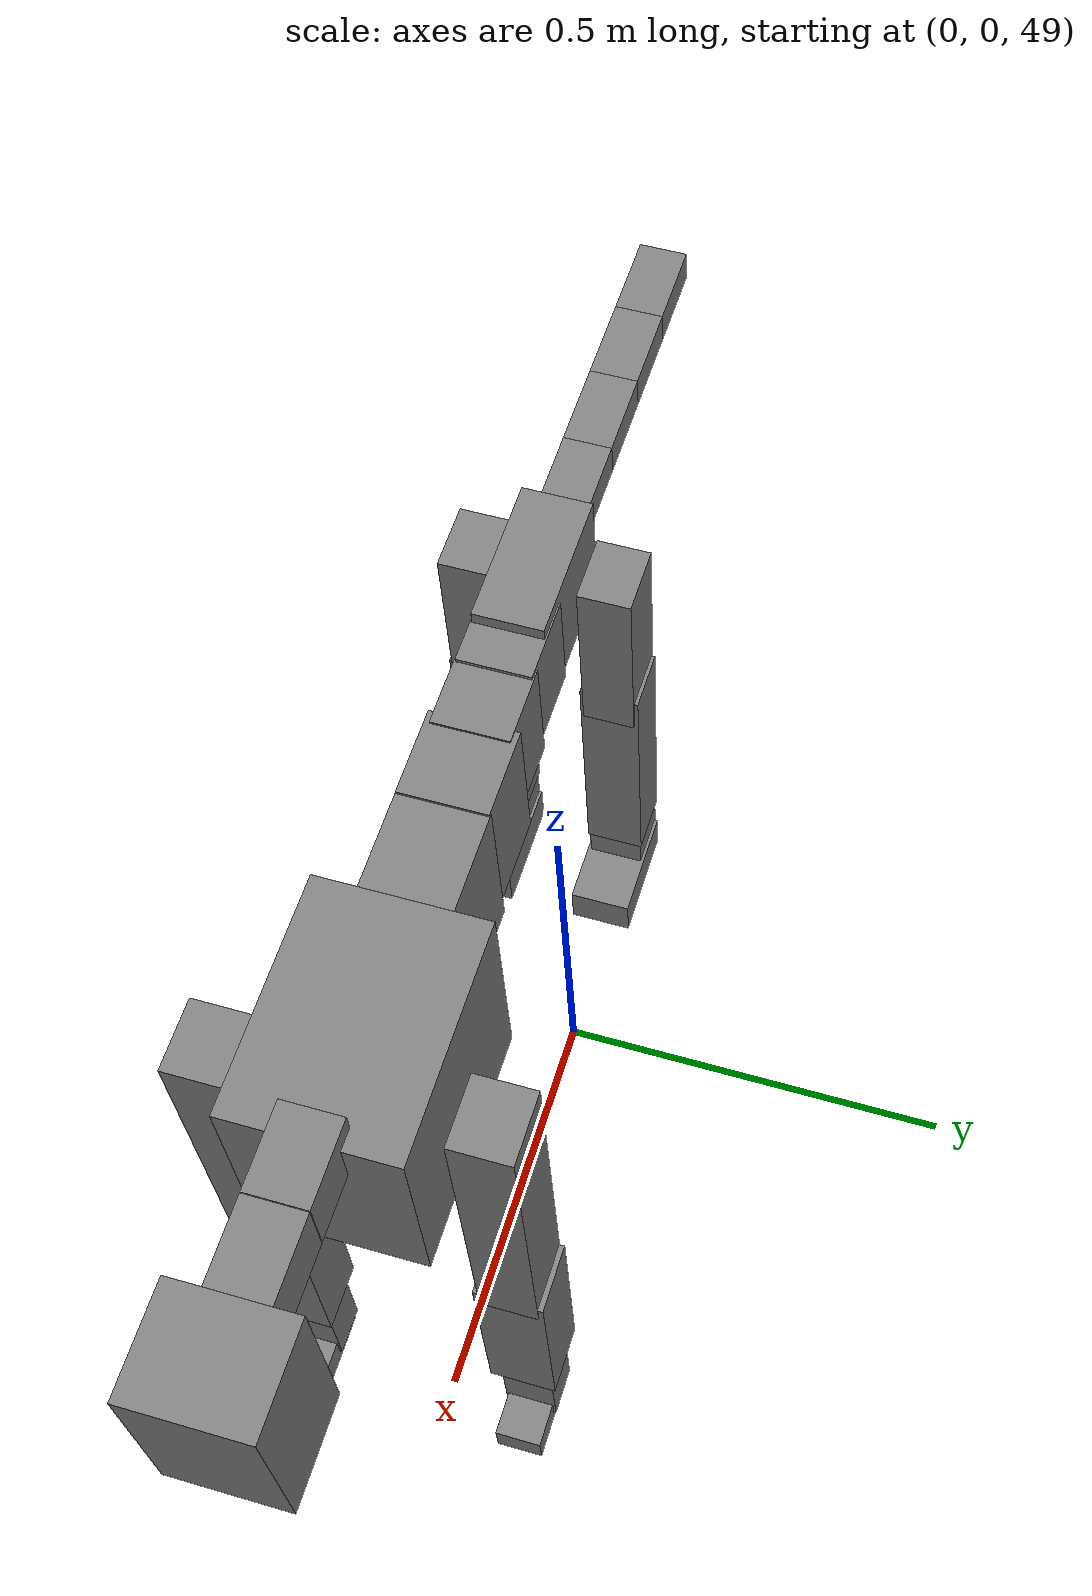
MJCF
<mujoco model="dog">

    <default>
        <joint armature="0.02" stiffness="1" damping="0.2" limited="true"/>
        <geom condim="3" friction="1 0.05 0.05" margin="0.01"/>
        <motor ctrllimited="true" ctrlrange="-1.0 1.0" forcelimited="true" gear="50"/>
    </default>

    <compiler inertiafromgeom="true" angle="radian"/>

    <option timestep="0.016" iterations="50" tolerance="1e-10" solver="Newton" jacobian="dense" cone="pyramidal"/>

    <size nconmax="20000" njmax="60000" nstack="5000000"/>
    <visual>
        <map force="0.1" zfar="30"/>
        <rgba haze="0.15 0.25 0.35 1"/>
        <quality shadowsize="2048"/>
        <global offwidth="800" offheight="800"/>
    </visual>

    <asset>
        <texture type="skybox" builtin="gradient" rgb1="0.3 0.5 0.7" rgb2="0 0 0" width="512" height="512"/>
        <texture name="texplane" type="2d" builtin="checker" rgb1=".2 .3 .4" rgb2=".1 0.15 0.2" width="512" height="512"
                 mark="cross" markrgb=".8 .8 .8"/>
        <texture name="texgeom" type="cube" builtin="flat" mark="cross" width="127" height="1278" rgb1="0.8 0.6 0.4"
                 rgb2="0.8 0.6 0.4" markrgb="1 1 1" random="0.01"/>

        <material name="matplane" reflectance="0.3" texture="texplane" texrepeat="1 1" texuniform="true"/>
        <material name="matgeom" texture="texgeom" texuniform="true" rgba="0.8 0.6 .4 1"/>
    </asset>

    <worldbody>
        <geom name="floor" pos="0 0 0" size="0 0 .25" type="plane" material="matplane" condim="3"/>

        <light directional="false" diffuse=".2 .2 .2" specular="0 0 0" pos="0 0 5" dir="0 0 -1" castshadow="false"/>
        <light mode="targetbodycom" target="torso" directional="false" diffuse=".8 .8 .8" specular="0.3 0.3 0.3"
               pos="0 0 4.0" dir="0 0 -1"/>

        <body name="root" pos="0 0 50">
            <freejoint name="root_1"/>
            <geom type="box" pos="0 0 -0.02" size="0.0774  0.0358  0.063" density="2030"/>

            <body name="spine1" pos="0.054 0 0">
                <joint name="spine1_y" axis="0 1 0" range="0 0.7" limited="true"/>
                <geom type="box" pos="0.02375 0 -0.03" size="0.04375  0.0375  0.05985" density="2030"/>

                <body name="spine2" pos="0.0612 0 0">
                    <joint name="spine2_y" axis="0 1 0" range="-0.15 0.15" limited="true"/>
                    <geom type="box" pos="0.03555  0  -0.04" size="0.04055  0.039  0.06615" density="2030"/>

                    <body name="spine3" pos="0.0730 0 0">
                        <joint name="spine3_y" axis="0 1 0" range="-0.15 0.15" limited="true"/>
                        <geom type="box" pos="0.03555  0  -0.057" size="0.04555  0.0445  0.081" density="2030"/>

                        <body name="spine4" pos="0.0780 0 0">
                            <joint name="spine4_y" axis="0 1 0" range="-0.15 0.15" limited="true"/>
                            <geom type="box" pos="0.05265  0  -0.07" size="0.05265  0.045  0.09135" density="2030"/>

                            <body name="torso" pos="0.1082 0 0">
                                <joint name="torso_y" axis="0 1 0" range="-0.15 0.15" limited="true"/>
                                <geom type="box" pos="0.11925  0  -0.085" size="0.11925  0.085  0.11745"
                                      density="2030"/>

                                <body name="neck1" pos="0.2160  0   0.0180">
                                    <joint name="neck1_y" axis="0 1 0" range="-1.2  -1" limited="true"/>
                                    <geom type="box" pos="0.0423  0  0" size="0.0423  0.03  0.036" density="2325"/>

                                    <body name="neck2" pos="0.0853  0  0">
                                        <joint name="neck2_y" axis="0 1 0" range="0.1  0" limited="true"/>
                                        <geom type="box" pos="0.0423  0  0" size="0.0423  0.03  0.036" density="2325"/>

                                        <body name="head" pos="0.0853  0  0">
                                            <joint name="head_y" axis="0 1 0" range="-0.3  -0.2" limited="true"/>
                                            <geom type="box" pos="0.0531  0  -0.055" size="0.0531  0.06  0.1044"
                                                  density="4030"/>

                                        </body>
                                    </body>
                                </body>

                                <body name="front_shoulder" pos="0.156  0   -0.0480">
                                    <joint name="front_shoulder_y" axis="0 1 0" range="-1 1.5" limited="true"/>
                                    <geom type="box" pos="0 0.13 -0.1756" size="0.0365  0.0312  0.2023" density="1158"/>
                                    <geom type="box" pos="0 -0.13 -0.1756" size="0.0365  0.0312  0.2023"
                                          density="1158"/>

                                    <body name="front_elbow" pos="0  0  -0.3513">
                                        <joint name="front_elbow_y" axis="0 1 0" range="-2 0" limited="true"/>
                                        <geom type="box" pos="0 0.13 -0.1345" size="0.0360  0.0369  0.1345"
                                              density="1081"/>
                                        <geom type="box" pos="0 -0.13 -0.1345" size="0.0360  0.0369  0.1345"
                                              density="1081"/>

                                        <body name="front_wrist" pos="0  0  -0.2690">
                                            <joint name="front_wrist_y" axis="0 1 0" range="-0.2 0" limited="true"/>
                                            <geom type="box" pos="0 0.13 -0.0569" size="0.0259  0.0288  0.0700"
                                                  density="1664"/>
                                            <geom type="box" pos="0 -0.13 -0.0569" size="0.0259  0.0288  0.0700"
                                                  density="1664"/>

                                            <body name="front_finger_end" pos="0  0  -0.1137">
                                                <joint name="front_finger_y" axis="0 1 0" range="-0.4 1"
                                                       limited="true"/>
                                                <geom type="box" pos="0.0261  0.13  -0.0064"
                                                      size="0.0478  0.0261  0.0214" density="1515"/>
                                                <geom type="box" pos="0.0261  -0.13  -0.0064"
                                                      size="0.0478  0.0261  0.0214" density="1515"/>

                                            </body>

                                        </body>
                                    </body>
                                </body>

                            </body>
                        </body>
                    </body>
                </body>
            </body>

            <body name="back_hip" pos="-0.03 0 -0.018">
                <joint name="back_hip_y" axis="0 1 0" range="-1.5 0.3" limited="true"/>
                <geom type="box" pos="0 0.07 -0.0804" size="0.0346  0.0272  0.1032" density="1154"/>
                <geom type="box" pos="0 -0.07 -0.0804" size="0.0346  0.0272  0.1032" density="1154"/>

                <body name="back_knee" pos="0  0  -0.1607">
                    <joint name="back_knee_y" axis="0 1 0" range="0 2.8" limited="true"/>
                    <geom type="box" pos="0 0.07 -0.1279" size="0.0314  0.0309  0.1434" density="1227"/>
                    <geom type="box" pos="0 -0.07 -0.1279" size="0.0314  0.0309  0.1434" density="1227"/>

                    <body name="back_ankle" pos="0  0  -0.2557">
                        <joint name="back_ankle_y" axis="0 1 0" range="-2.2 0" limited="true"/>
                        <geom type="box" pos="0 0.07 -0.0335" size="0.0294  0.0294  0.0447" density="1284"/>
                        <geom type="box" pos="0 -0.07 -0.0335" size="0.0294  0.0294  0.0447" density="1284"/>

                        <body name="back_toe_end" pos="0  0  -0.0669">
                            <joint name="back_toe_y" axis="0 1 0" range="-0.4 1" limited="true"/>
                            <geom type="box" pos="0.0329  0.07  -0.0081" size="0.0604  0.0329  0.0231" density="1515"/>
                            <geom type="box" pos="0.0329  -0.07  -0.0081" size="0.0604  0.0329  0.0231" density="1515"/>

                        </body>
                    </body>
                </body>
            </body>

            <body name="tail1" pos="-0.074 0 -0.006">
                <joint name="tail1_y" axis="0 1 0" range="-0.2 0.2" limited="true"/>
                <geom type="box" pos="-0.0536  0  0" size="0.045  0.025  0.0175" density="1587"/>

                <body name="tail2" pos="-0.09 0 0">
                    <joint name="tail2_y" axis="0 1 0" range="-0.2 0.2" limited="true"/>
                    <geom type="box" pos="-0.0536  0  0" size="0.045  0.025  0.0175" density="1587"/>

                    <body name="tail3" pos="-0.09 0 0">
                        <joint name="tail3_y" axis="0 1 0" range="-0.2 0.2" limited="true"/>
                        <geom type="box" pos="-0.0536  0  0" size="0.045  0.025  0.0175" density="1587"/>

                        <body name="tail4" pos="-0.09 0 0">
                            <joint name="tail4_y" axis="0 1 0" range="-0.2 0.2" limited="true"/>
                            <geom type="box" pos="-0.0536  0  0" size="0.045  0.025  0.0175" density="1587"/>

                        </body>
                    </body>
                </body>
            </body>
        </body>
    </worldbody>

    <actuator>
        <motor joint="spine1_y" forcerange="-150 150     "/>
        <motor joint="spine2_y" forcerange="-150 150     "/>
        <motor joint="spine3_y" forcerange="-150 150     "/>
        <motor joint="spine4_y" forcerange="-150 150     "/>
        <motor joint="torso_y" forcerange="-150 150     "/>
        <motor joint="neck1_y" forcerange="-100 100       "/>
        <motor joint="neck2_y" forcerange="-100 100       "/>
        <motor joint="head_y" forcerange="-150 150       "/>
        <motor joint="front_shoulder_y" forcerange="-178.51 129.46"/>
        <motor joint="front_elbow_y" forcerange="-183.11 184.89"/>
        <motor joint="front_wrist_y" forcerange="-83.90 146.15"/>
        <motor joint="front_finger_y" forcerange="-39.38 59.62"/>
        <motor joint="back_hip_y" forcerange="-237.71 324.58"/>
        <motor joint="back_knee_y" forcerange="-352.01 297.52"/>
        <motor joint="back_angle_y" forcerange="-239.05 131.21"/>
        <motor joint="back_toe_y" forcerange="-97.60 85.88"/>
        <motor joint="tail1_y" forcerange="-50 50     "/>
        <motor joint="tail2_y" forcerange="-50 50     "/>
        <motor joint="tail3_y" forcerange="-50 50     "/>
        <motor joint="tail4_y" forcerange="-50 50     "/>
    </actuator>
</mujoco>
